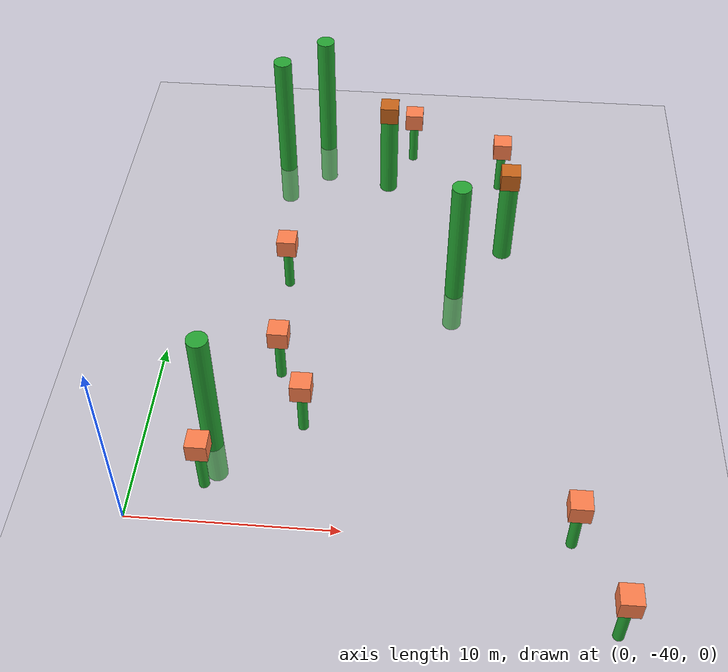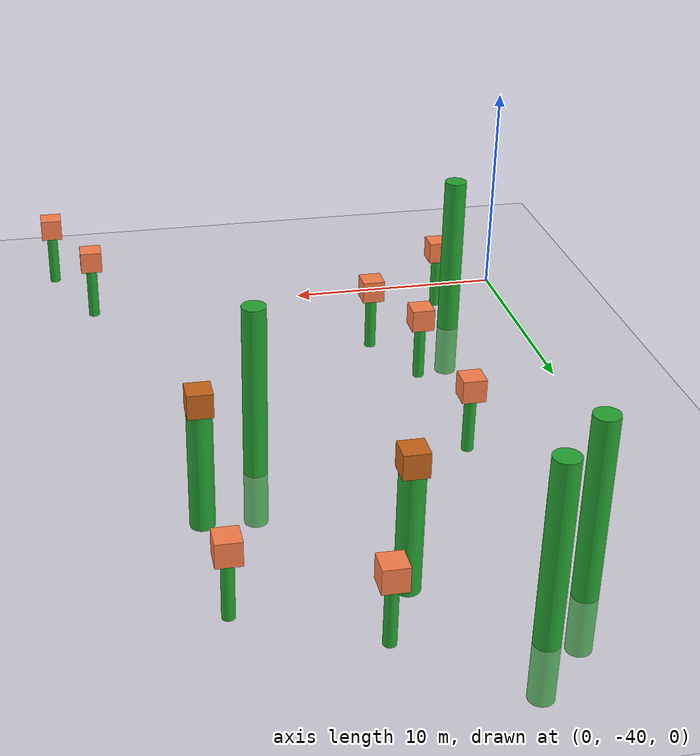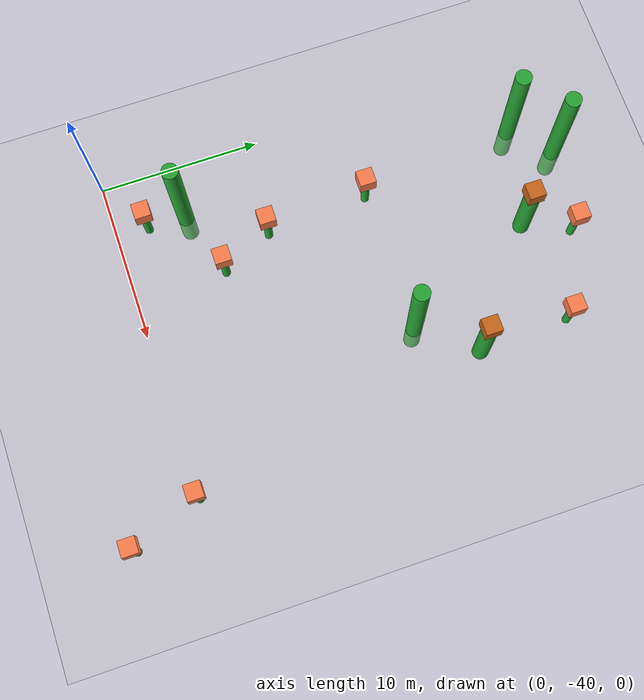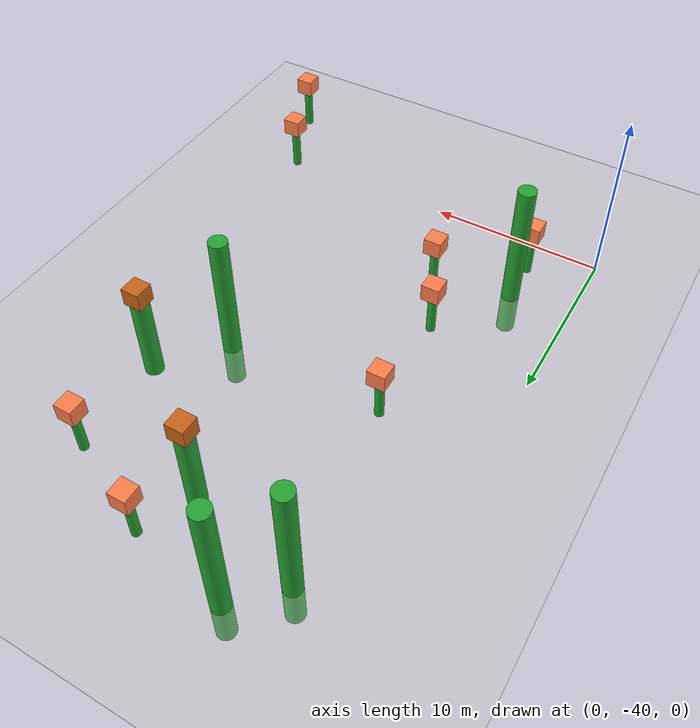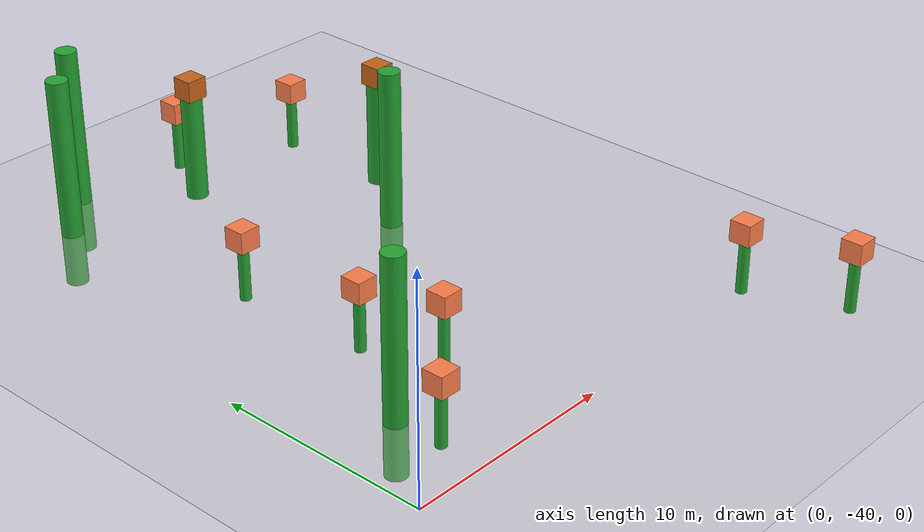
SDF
<sdf version="1.7">
 <world name="default">
  <model name="ground_plane">
   <static>1</static>
   <link name="link">
    <collision name="collision">
     <geometry><plane><normal>0 0 1</normal><size>100 100</size></plane></geometry>
     <surface>
      <contact><collide_bitmask>65535</collide_bitmask></contact>
      <friction><ode><mu>100</mu><mu2>50</mu2></ode></friction>
     </surface>
    </collision>
    <visual name="visual">
     <cast_shadows>0</cast_shadows>
     <geometry><plane><normal>0 0 1</normal><size>100 100</size></plane></geometry>
     <material>
      <script><uri>file://media/materials/scripts/gazebo.material</uri><name>Gazebo/Grey</name></script>
     </material>
    </visual>
   </link>
  </model>
  <model name="unit_cylinder_green_2_clone_clone_15">
   <link name="link">
    <inertial>
     <mass>1</mass>
     <inertia><ixx>0.145833</ixx><ixy>0</ixy><ixz>0</ixz><iyy>0.145833</iyy><iyz>0</iyz><izz>0.125</izz></inertia>
    </inertial>
    <visual name="visual">
     <geometry><cylinder><radius>0.5</radius><length>10</length></cylinder></geometry>
     <material>
      <script><name>Gazebo/Green</name><uri>file://media/materials/scripts/gazebo.material</uri></script>
      <shader type="pixel"><normal_map>__default__</normal_map></shader>
      <ambient>0 1 0.3 1</ambient>
      <diffuse>0.7 0.7 0.7 1</diffuse>
      <specular>0.01 0.01 0.01 1</specular>
      <emissive>0 0 0 1</emissive>
     </material>
    </visual>
    <collision name="collision">
     <geometry><cylinder><radius>0.5</radius><length>5</length></cylinder></geometry>
     <surface>
      <friction>
       <ode><mu>1</mu><mu2>1</mu2><fdir1>0 0 0</fdir1><slip1>0</slip1><slip2>0</slip2></ode>
       <torsional>
        <coefficient>1</coefficient>
        <patch_radius>0</patch_radius>
        <surface_radius>0</surface_radius>
        <use_patch_radius>1</use_patch_radius>
        <ode><slip>0</slip></ode>
       </torsional>
      </friction>
      <bounce><restitution_coefficient>0</restitution_coefficient><threshold>1e+06</threshold></bounce>
      <contact>
       <collide_without_contact>0</collide_without_contact>
       <collide_without_contact_bitmask>1</collide_without_contact_bitmask>
       <collide_bitmask>1</collide_bitmask>
       <ode>
        <soft_cfm>0</soft_cfm>
        <soft_erp>0.2</soft_erp>
        <kp>1e+13</kp>
        <kd>1</kd>
        <max_vel>0.01</max_vel>
        <min_depth>0</min_depth>
       </ode>
       <bullet>
        <split_impulse>1</split_impulse>
        <split_impulse_penetration_threshold>-0.01</split_impulse_penetration_threshold>
        <soft_cfm>0</soft_cfm>
        <soft_erp>0.2</soft_erp>
        <kp>1e+13</kp>
        <kd>1</kd>
       </bullet>
      </contact>
     </surface>
    </collision>
   </link>
   <static>1</static>
   <pose>4.37271 -14.6733 2.5 0 0 -0.000967</pose>
  </model>
  <model name="unit_cylinder_green_2_clone_clone_24">
   <link name="link">
    <inertial>
     <mass>1</mass>
     <inertia><ixx>0.145833</ixx><ixy>0</ixy><ixz>0</ixz><iyy>0.145833</iyy><iyz>0</iyz><izz>0.125</izz></inertia>
    </inertial>
    <visual name="visual">
     <geometry><cylinder><radius>0.5</radius><length>10</length></cylinder></geometry>
     <material>
      <script><name>Gazebo/Green</name><uri>file://media/materials/scripts/gazebo.material</uri></script>
      <shader type="pixel"><normal_map>__default__</normal_map></shader>
      <ambient>0 1 0.3 1</ambient>
      <diffuse>0.7 0.7 0.7 1</diffuse>
      <specular>0.01 0.01 0.01 1</specular>
      <emissive>0 0 0 1</emissive>
     </material>
    </visual>
    <collision name="collision">
     <geometry><cylinder><radius>0.5</radius><length>5</length></cylinder></geometry>
     <surface>
      <friction>
       <ode><mu>1</mu><mu2>1</mu2><fdir1>0 0 0</fdir1><slip1>0</slip1><slip2>0</slip2></ode>
       <torsional>
        <coefficient>1</coefficient>
        <patch_radius>0</patch_radius>
        <surface_radius>0</surface_radius>
        <use_patch_radius>1</use_patch_radius>
        <ode><slip>0</slip></ode>
       </torsional>
      </friction>
      <bounce><restitution_coefficient>0</restitution_coefficient><threshold>1e+06</threshold></bounce>
      <contact>
       <collide_without_contact>0</collide_without_contact>
       <collide_without_contact_bitmask>1</collide_without_contact_bitmask>
       <collide_bitmask>1</collide_bitmask>
       <ode>
        <soft_cfm>0</soft_cfm>
        <soft_erp>0.2</soft_erp>
        <kp>1e+13</kp>
        <kd>1</kd>
        <max_vel>0.01</max_vel>
        <min_depth>0</min_depth>
       </ode>
       <bullet>
        <split_impulse>1</split_impulse>
        <split_impulse_penetration_threshold>-0.01</split_impulse_penetration_threshold>
        <soft_cfm>0</soft_cfm>
        <soft_erp>0.2</soft_erp>
        <kp>1e+13</kp>
        <kd>1</kd>
       </bullet>
      </contact>
     </surface>
    </collision>
   </link>
   <static>1</static>
   <pose>14.6632 -24.6133 2.5 0 0 -0.000967</pose>
  </model>
  <model name="unit_cylinder_green_2_clone_clone_26">
   <link name="link">
    <inertial>
     <mass>1</mass>
     <inertia><ixx>0.145833</ixx><ixy>0</ixy><ixz>0</ixz><iyy>0.145833</iyy><iyz>0</iyz><izz>0.125</izz></inertia>
    </inertial>
    <visual name="visual">
     <geometry><cylinder><radius>0.5</radius><length>10</length></cylinder></geometry>
     <material>
      <script><name>Gazebo/Green</name><uri>file://media/materials/scripts/gazebo.material</uri></script>
      <shader type="pixel"><normal_map>__default__</normal_map></shader>
      <ambient>0 1 0.3 1</ambient>
      <diffuse>0.7 0.7 0.7 1</diffuse>
      <specular>0.01 0.01 0.01 1</specular>
      <emissive>0 0 0 1</emissive>
     </material>
    </visual>
    <collision name="collision">
     <geometry><cylinder><radius>0.5</radius><length>5</length></cylinder></geometry>
     <surface>
      <friction>
       <ode><mu>1</mu><mu2>1</mu2><fdir1>0 0 0</fdir1><slip1>0</slip1><slip2>0</slip2></ode>
       <torsional>
        <coefficient>1</coefficient>
        <patch_radius>0</patch_radius>
        <surface_radius>0</surface_radius>
        <use_patch_radius>1</use_patch_radius>
        <ode><slip>0</slip></ode>
       </torsional>
      </friction>
      <bounce><restitution_coefficient>0</restitution_coefficient><threshold>1e+06</threshold></bounce>
      <contact>
       <collide_without_contact>0</collide_without_contact>
       <collide_without_contact_bitmask>1</collide_without_contact_bitmask>
       <collide_bitmask>1</collide_bitmask>
       <ode>
        <soft_cfm>0</soft_cfm>
        <soft_erp>0.2</soft_erp>
        <kp>1e+13</kp>
        <kd>1</kd>
        <max_vel>0.01</max_vel>
        <min_depth>0</min_depth>
       </ode>
       <bullet>
        <split_impulse>1</split_impulse>
        <split_impulse_penetration_threshold>-0.01</split_impulse_penetration_threshold>
        <soft_cfm>0</soft_cfm>
        <soft_erp>0.2</soft_erp>
        <kp>1e+13</kp>
        <kd>1</kd>
       </bullet>
      </contact>
     </surface>
    </collision>
   </link>
   <static>1</static>
   <pose>3.3991 -35.5892 2.5 0 0 -0.000967</pose>
  </model>
  <model name="unit_cylinder_green_2_clone_clone_15_clone">
   <link name="link">
    <inertial>
     <mass>1</mass>
     <inertia><ixx>0.145833</ixx><ixy>0</ixy><ixz>0</ixz><iyy>0.145833</iyy><iyz>0</iyz><izz>0.125</izz></inertia>
    </inertial>
    <visual name="visual">
     <geometry><cylinder><radius>0.5</radius><length>10</length></cylinder></geometry>
     <material>
      <script><name>Gazebo/Green</name><uri>file://media/materials/scripts/gazebo.material</uri></script>
      <shader type="pixel"><normal_map>__default__</normal_map></shader>
      <ambient>0 1 0.3 1</ambient>
      <diffuse>0.7 0.7 0.7 1</diffuse>
      <specular>0.01 0.01 0.01 1</specular>
      <emissive>0 0 0 1</emissive>
     </material>
    </visual>
    <collision name="collision">
     <geometry><cylinder><radius>0.5</radius><length>5</length></cylinder></geometry>
     <surface>
      <friction>
       <ode><mu>1</mu><mu2>1</mu2><fdir1>0 0 0</fdir1><slip1>0</slip1><slip2>0</slip2></ode>
       <torsional>
        <coefficient>1</coefficient>
        <patch_radius>0</patch_radius>
        <surface_radius>0</surface_radius>
        <use_patch_radius>1</use_patch_radius>
        <ode><slip>0</slip></ode>
       </torsional>
      </friction>
      <bounce><restitution_coefficient>0</restitution_coefficient><threshold>1e+06</threshold></bounce>
      <contact>
       <collide_without_contact>0</collide_without_contact>
       <collide_without_contact_bitmask>1</collide_without_contact_bitmask>
       <collide_bitmask>1</collide_bitmask>
       <ode>
        <soft_cfm>0</soft_cfm>
        <soft_erp>0.2</soft_erp>
        <kp>1e+13</kp>
        <kd>1</kd>
        <max_vel>0.01</max_vel>
        <min_depth>0</min_depth>
       </ode>
       <bullet>
        <split_impulse>1</split_impulse>
        <split_impulse_penetration_threshold>-0.01</split_impulse_penetration_threshold>
        <soft_cfm>0</soft_cfm>
        <soft_erp>0.2</soft_erp>
        <kp>1e+13</kp>
        <kd>1</kd>
       </bullet>
      </contact>
     </surface>
    </collision>
   </link>
   <static>1</static>
   <pose>6.58105 -12.4761 2.5 0 0 -0.000946</pose>
  </model>
  <model name="unit_cylinder_green_2_clone_clone_3_clone_0_clone_0_clone_8">
   <link name="link">
    <inertial>
     <mass>1</mass>
     <inertia><ixx>0.145833</ixx><ixy>0</ixy><ixz>0</ixz><iyy>0.145833</iyy><iyz>0</iyz><izz>0.125</izz></inertia>
    </inertial>
    <visual name="visual">
     <geometry><cylinder><radius>0.5</radius><length>5</length></cylinder></geometry>
     <material>
      <script><name>Gazebo/Green</name><uri>file://media/materials/scripts/gazebo.material</uri></script>
      <shader type="pixel"><normal_map>__default__</normal_map></shader>
      <ambient>0 1 0.3 1</ambient>
      <diffuse>0.7 0.7 0.7 1</diffuse>
      <specular>0.01 0.01 0.01 1</specular>
      <emissive>0 0 0 1</emissive>
     </material>
    </visual>
    <collision name="collision">
     <geometry><cylinder><radius>0.5</radius><length>5</length></cylinder></geometry>
     <surface>
      <friction>
       <ode><mu>1</mu><mu2>1</mu2><fdir1>0 0 0</fdir1><slip1>0</slip1><slip2>0</slip2></ode>
       <torsional>
        <coefficient>1</coefficient>
        <patch_radius>0</patch_radius>
        <surface_radius>0</surface_radius>
        <use_patch_radius>1</use_patch_radius>
        <ode><slip>0</slip></ode>
       </torsional>
      </friction>
      <bounce><restitution_coefficient>0</restitution_coefficient><threshold>1e+06</threshold></bounce>
      <contact>
       <collide_without_contact>0</collide_without_contact>
       <collide_without_contact_bitmask>1</collide_without_contact_bitmask>
       <collide_bitmask>1</collide_bitmask>
       <ode>
        <soft_cfm>0</soft_cfm>
        <soft_erp>0.2</soft_erp>
        <kp>1e+13</kp>
        <kd>1</kd>
        <max_vel>0.01</max_vel>
        <min_depth>0</min_depth>
       </ode>
       <bullet>
        <split_impulse>1</split_impulse>
        <split_impulse_penetration_threshold>-0.01</split_impulse_penetration_threshold>
        <soft_cfm>0</soft_cfm>
        <soft_erp>0.2</soft_erp>
        <kp>1e+13</kp>
        <kd>1</kd>
       </bullet>
      </contact>
     </surface>
    </collision>
   </link>
   <link name="link_3">
    <inertial>
     <mass>1</mass>
     <inertia>
      <ixx>0.166667</ixx>
      <ixy>0</ixy>
      <ixz>0</ixz>
      <iyy>0.166667</iyy>
      <iyz>0</iyz>
      <izz>0.166667</izz>
     </inertia>
    </inertial>
    <pose>0 0 3 0 -0 0.000935</pose>
    <visual name="visual">
     <geometry><box><size>1 1 1</size></box></geometry>
     <material>
      <lighting>1</lighting>
      <script><uri>file://media/materials/scripts/gazebo.material</uri><name>Gazebo/Grey</name></script>
      <shader type="pixel"><normal_map>__default__</normal_map></shader>
      <ambient>0.8 0.4 0.1 1</ambient>
      <diffuse>0.7 0.7 0.7 1</diffuse>
      <specular>0.01 0.01 0.01 1</specular>
      <emissive>0 0 0 1</emissive>
     </material>
    </visual>
    <collision name="collision">
     <geometry><box><size>1 1 1</size></box></geometry>
     <surface>
      <friction>
       <ode><mu>1</mu><mu2>1</mu2><fdir1>0 0 0</fdir1><slip1>0</slip1><slip2>0</slip2></ode>
       <torsional>
        <coefficient>1</coefficient>
        <patch_radius>0</patch_radius>
        <surface_radius>0</surface_radius>
        <use_patch_radius>1</use_patch_radius>
        <ode><slip>0</slip></ode>
       </torsional>
      </friction>
      <bounce><restitution_coefficient>0</restitution_coefficient><threshold>1e+06</threshold></bounce>
      <contact>
       <collide_without_contact>0</collide_without_contact>
       <collide_without_contact_bitmask>1</collide_without_contact_bitmask>
       <collide_bitmask>1</collide_bitmask>
       <ode>
        <soft_cfm>0</soft_cfm>
        <soft_erp>0.2</soft_erp>
        <kp>1e+13</kp>
        <kd>1</kd>
        <max_vel>0.01</max_vel>
        <min_depth>0</min_depth>
       </ode>
       <bullet>
        <split_impulse>1</split_impulse>
        <split_impulse_penetration_threshold>-0.01</split_impulse_penetration_threshold>
        <soft_cfm>0</soft_cfm>
        <soft_erp>0.2</soft_erp>
        <kp>1e+13</kp>
        <kd>1</kd>
       </bullet>
      </contact>
     </surface>
    </collision>
   </link>
   <static>1</static>
   <pose>10.5411 -16.1097 2.49999 0 0 -0.000935</pose>
  </model>
  <model name="unit_cylinder_green_2_clone_clone_3_clone_0_clone_0_clone_11">
   <link name="link">
    <inertial>
     <mass>1</mass>
     <inertia><ixx>0.145833</ixx><ixy>0</ixy><ixz>0</ixz><iyy>0.145833</iyy><iyz>0</iyz><izz>0.125</izz></inertia>
    </inertial>
    <visual name="visual">
     <geometry><cylinder><radius>0.5</radius><length>5</length></cylinder></geometry>
     <material>
      <script><name>Gazebo/Green</name><uri>file://media/materials/scripts/gazebo.material</uri></script>
      <shader type="pixel"><normal_map>__default__</normal_map></shader>
      <ambient>0 1 0.3 1</ambient>
      <diffuse>0.7 0.7 0.7 1</diffuse>
      <specular>0.01 0.01 0.01 1</specular>
      <emissive>0 0 0 1</emissive>
     </material>
    </visual>
    <collision name="collision">
     <geometry><cylinder><radius>0.5</radius><length>5</length></cylinder></geometry>
     <surface>
      <friction>
       <ode><mu>1</mu><mu2>1</mu2><fdir1>0 0 0</fdir1><slip1>0</slip1><slip2>0</slip2></ode>
       <torsional>
        <coefficient>1</coefficient>
        <patch_radius>0</patch_radius>
        <surface_radius>0</surface_radius>
        <use_patch_radius>1</use_patch_radius>
        <ode><slip>0</slip></ode>
       </torsional>
      </friction>
      <bounce><restitution_coefficient>0</restitution_coefficient><threshold>1e+06</threshold></bounce>
      <contact>
       <collide_without_contact>0</collide_without_contact>
       <collide_without_contact_bitmask>1</collide_without_contact_bitmask>
       <collide_bitmask>1</collide_bitmask>
       <ode>
        <soft_cfm>0</soft_cfm>
        <soft_erp>0.2</soft_erp>
        <kp>1e+13</kp>
        <kd>1</kd>
        <max_vel>0.01</max_vel>
        <min_depth>0</min_depth>
       </ode>
       <bullet>
        <split_impulse>1</split_impulse>
        <split_impulse_penetration_threshold>-0.01</split_impulse_penetration_threshold>
        <soft_cfm>0</soft_cfm>
        <soft_erp>0.2</soft_erp>
        <kp>1e+13</kp>
        <kd>1</kd>
       </bullet>
      </contact>
     </surface>
    </collision>
   </link>
   <link name="link_3">
    <inertial>
     <mass>1</mass>
     <inertia>
      <ixx>0.166667</ixx>
      <ixy>0</ixy>
      <ixz>0</ixz>
      <iyy>0.166667</iyy>
      <iyz>0</iyz>
      <izz>0.166667</izz>
     </inertia>
    </inertial>
    <pose>0 0 3 0 -0 0.000935</pose>
    <visual name="visual">
     <geometry><box><size>1 1 1</size></box></geometry>
     <material>
      <lighting>1</lighting>
      <script><uri>file://media/materials/scripts/gazebo.material</uri><name>Gazebo/Grey</name></script>
      <shader type="pixel"><normal_map>__default__</normal_map></shader>
      <ambient>0.8 0.4 0.1 1</ambient>
      <diffuse>0.7 0.7 0.7 1</diffuse>
      <specular>0.01 0.01 0.01 1</specular>
      <emissive>0 0 0 1</emissive>
     </material>
    </visual>
    <collision name="collision">
     <geometry><box><size>1 1 1</size></box></geometry>
     <surface>
      <friction>
       <ode><mu>1</mu><mu2>1</mu2><fdir1>0 0 0</fdir1><slip1>0</slip1><slip2>0</slip2></ode>
       <torsional>
        <coefficient>1</coefficient>
        <patch_radius>0</patch_radius>
        <surface_radius>0</surface_radius>
        <use_patch_radius>1</use_patch_radius>
        <ode><slip>0</slip></ode>
       </torsional>
      </friction>
      <bounce><restitution_coefficient>0</restitution_coefficient><threshold>1e+06</threshold></bounce>
      <contact>
       <collide_without_contact>0</collide_without_contact>
       <collide_without_contact_bitmask>1</collide_without_contact_bitmask>
       <collide_bitmask>1</collide_bitmask>
       <ode>
        <soft_cfm>0</soft_cfm>
        <soft_erp>0.2</soft_erp>
        <kp>1e+13</kp>
        <kd>1</kd>
        <max_vel>0.01</max_vel>
        <min_depth>0</min_depth>
       </ode>
       <bullet>
        <split_impulse>1</split_impulse>
        <split_impulse_penetration_threshold>-0.01</split_impulse_penetration_threshold>
        <soft_cfm>0</soft_cfm>
        <soft_erp>0.2</soft_erp>
        <kp>1e+13</kp>
        <kd>1</kd>
       </bullet>
      </contact>
     </surface>
    </collision>
   </link>
   <static>1</static>
   <pose>17.2537 -21.3127 2.49999 0 0 -0.000935</pose>
  </model>
  <model name="unit_cylinder_green_2_clone_clone_3_clone_0_clone_0_clone_57">
   <link name="link">
    <inertial>
     <mass>1</mass>
     <inertia><ixx>0.145833</ixx><ixy>0</ixy><ixz>0</ixz><iyy>0.145833</iyy><iyz>0</iyz><izz>0.125</izz></inertia>
    </inertial>
    <pose>0 0 -1.25 0 -0 0</pose>
    <visual name="visual">
     <geometry><cylinder><radius>0.25</radius><length>2.5</length></cylinder></geometry>
     <material>
      <script><name>Gazebo/Green</name><uri>file://media/materials/scripts/gazebo.material</uri></script>
      <shader type="pixel"><normal_map>__default__</normal_map></shader>
      <ambient>0 1 0.3 1</ambient>
      <diffuse>0.7 0.7 0.7 1</diffuse>
      <specular>0.01 0.01 0.01 1</specular>
      <emissive>0 0 0 1</emissive>
     </material>
    </visual>
    <collision name="collision">
     <geometry><cylinder><radius>0.5</radius><length>5</length></cylinder></geometry>
     <surface>
      <friction>
       <ode><mu>1</mu><mu2>1</mu2><fdir1>0 0 0</fdir1><slip1>0</slip1><slip2>0</slip2></ode>
       <torsional>
        <coefficient>1</coefficient>
        <patch_radius>0</patch_radius>
        <surface_radius>0</surface_radius>
        <use_patch_radius>1</use_patch_radius>
        <ode><slip>0</slip></ode>
       </torsional>
      </friction>
      <bounce><restitution_coefficient>0</restitution_coefficient><threshold>1e+06</threshold></bounce>
      <contact>
       <collide_without_contact>0</collide_without_contact>
       <collide_without_contact_bitmask>1</collide_without_contact_bitmask>
       <collide_bitmask>1</collide_bitmask>
       <ode>
        <soft_cfm>0</soft_cfm>
        <soft_erp>0.2</soft_erp>
        <kp>1e+13</kp>
        <kd>1</kd>
        <max_vel>0.01</max_vel>
        <min_depth>0</min_depth>
       </ode>
       <bullet>
        <split_impulse>1</split_impulse>
        <split_impulse_penetration_threshold>-0.01</split_impulse_penetration_threshold>
        <soft_cfm>0</soft_cfm>
        <soft_erp>0.2</soft_erp>
        <kp>1e+13</kp>
        <kd>1</kd>
       </bullet>
      </contact>
     </surface>
    </collision>
   </link>
   <link name="link_3">
    <inertial>
     <mass>1</mass>
     <inertia>
      <ixx>0.166667</ixx>
      <ixy>0</ixy>
      <ixz>0</ixz>
      <iyy>0.166667</iyy>
      <iyz>0</iyz>
      <izz>0.166667</izz>
     </inertia>
    </inertial>
    <pose>0 0 0.5 0 -0 0.000935</pose>
    <visual name="visual">
     <geometry><box><size>1 1 1</size></box></geometry>
     <material>
      <lighting>1</lighting>
      <script><uri>file://media/materials/scripts/gazebo.material</uri><name>Gazebo/Grey</name></script>
      <shader type="pixel"><normal_map>__default__</normal_map></shader>
      <ambient>1 0.5 0.3 1</ambient>
      <diffuse>0.7 0.7 0.7 1</diffuse>
      <specular>0.01 0.01 0.01 1</specular>
      <emissive>0 0 0 1</emissive>
     </material>
    </visual>
    <collision name="collision">
     <geometry><box><size>1 1 1</size></box></geometry>
     <surface>
      <friction>
       <ode><mu>1</mu><mu2>1</mu2><fdir1>0 0 0</fdir1><slip1>0</slip1><slip2>0</slip2></ode>
       <torsional>
        <coefficient>1</coefficient>
        <patch_radius>0</patch_radius>
        <surface_radius>0</surface_radius>
        <use_patch_radius>1</use_patch_radius>
        <ode><slip>0</slip></ode>
       </torsional>
      </friction>
      <bounce><restitution_coefficient>0</restitution_coefficient><threshold>1e+06</threshold></bounce>
      <contact>
       <collide_without_contact>0</collide_without_contact>
       <collide_without_contact_bitmask>1</collide_without_contact_bitmask>
       <collide_bitmask>1</collide_bitmask>
       <ode>
        <soft_cfm>0</soft_cfm>
        <soft_erp>0.2</soft_erp>
        <kp>1e+13</kp>
        <kd>1</kd>
        <max_vel>0.01</max_vel>
        <min_depth>0</min_depth>
       </ode>
       <bullet>
        <split_impulse>1</split_impulse>
        <split_impulse_penetration_threshold>-0.01</split_impulse_penetration_threshold>
        <soft_cfm>0</soft_cfm>
        <soft_erp>0.2</soft_erp>
        <kp>1e+13</kp>
        <kd>1</kd>
       </bullet>
      </contact>
     </surface>
    </collision>
   </link>
   <static>1</static>
   <pose>6.10881 -31.0498 2.49999 0 0 -0.000935</pose>
  </model>
  <model name="unit_cylinder_green_2_clone_clone_3_clone_0_clone_0_clone_58">
   <link name="link">
    <inertial>
     <mass>1</mass>
     <inertia><ixx>0.145833</ixx><ixy>0</ixy><ixz>0</ixz><iyy>0.145833</iyy><iyz>0</iyz><izz>0.125</izz></inertia>
    </inertial>
    <pose>0 0 -1.25 0 -0 0</pose>
    <visual name="visual">
     <geometry><cylinder><radius>0.25</radius><length>2.5</length></cylinder></geometry>
     <material>
      <script><name>Gazebo/Green</name><uri>file://media/materials/scripts/gazebo.material</uri></script>
      <shader type="pixel"><normal_map>__default__</normal_map></shader>
      <ambient>0 1 0.3 1</ambient>
      <diffuse>0.7 0.7 0.7 1</diffuse>
      <specular>0.01 0.01 0.01 1</specular>
      <emissive>0 0 0 1</emissive>
     </material>
    </visual>
    <collision name="collision">
     <geometry><cylinder><radius>0.5</radius><length>5</length></cylinder></geometry>
     <surface>
      <friction>
       <ode><mu>1</mu><mu2>1</mu2><fdir1>0 0 0</fdir1><slip1>0</slip1><slip2>0</slip2></ode>
       <torsional>
        <coefficient>1</coefficient>
        <patch_radius>0</patch_radius>
        <surface_radius>0</surface_radius>
        <use_patch_radius>1</use_patch_radius>
        <ode><slip>0</slip></ode>
       </torsional>
      </friction>
      <bounce><restitution_coefficient>0</restitution_coefficient><threshold>1e+06</threshold></bounce>
      <contact>
       <collide_without_contact>0</collide_without_contact>
       <collide_without_contact_bitmask>1</collide_without_contact_bitmask>
       <collide_bitmask>1</collide_bitmask>
       <ode>
        <soft_cfm>0</soft_cfm>
        <soft_erp>0.2</soft_erp>
        <kp>1e+13</kp>
        <kd>1</kd>
        <max_vel>0.01</max_vel>
        <min_depth>0</min_depth>
       </ode>
       <bullet>
        <split_impulse>1</split_impulse>
        <split_impulse_penetration_threshold>-0.01</split_impulse_penetration_threshold>
        <soft_cfm>0</soft_cfm>
        <soft_erp>0.2</soft_erp>
        <kp>1e+13</kp>
        <kd>1</kd>
       </bullet>
      </contact>
     </surface>
    </collision>
   </link>
   <link name="link_3">
    <inertial>
     <mass>1</mass>
     <inertia>
      <ixx>0.166667</ixx>
      <ixy>0</ixy>
      <ixz>0</ixz>
      <iyy>0.166667</iyy>
      <iyz>0</iyz>
      <izz>0.166667</izz>
     </inertia>
    </inertial>
    <pose>0 0 0.5 0 -0 0.000935</pose>
    <visual name="visual">
     <geometry><box><size>1 1 1</size></box></geometry>
     <material>
      <lighting>1</lighting>
      <script><uri>file://media/materials/scripts/gazebo.material</uri><name>Gazebo/Grey</name></script>
      <shader type="pixel"><normal_map>__default__</normal_map></shader>
      <ambient>1 0.5 0.3 1</ambient>
      <diffuse>0.7 0.7 0.7 1</diffuse>
      <specular>0.01 0.01 0.01 1</specular>
      <emissive>0 0 0 1</emissive>
     </material>
    </visual>
    <collision name="collision">
     <geometry><box><size>1 1 1</size></box></geometry>
     <surface>
      <friction>
       <ode><mu>1</mu><mu2>1</mu2><fdir1>0 0 0</fdir1><slip1>0</slip1><slip2>0</slip2></ode>
       <torsional>
        <coefficient>1</coefficient>
        <patch_radius>0</patch_radius>
        <surface_radius>0</surface_radius>
        <use_patch_radius>1</use_patch_radius>
        <ode><slip>0</slip></ode>
       </torsional>
      </friction>
      <bounce><restitution_coefficient>0</restitution_coefficient><threshold>1e+06</threshold></bounce>
      <contact>
       <collide_without_contact>0</collide_without_contact>
       <collide_without_contact_bitmask>1</collide_without_contact_bitmask>
       <collide_bitmask>1</collide_bitmask>
       <ode>
        <soft_cfm>0</soft_cfm>
        <soft_erp>0.2</soft_erp>
        <kp>1e+13</kp>
        <kd>1</kd>
        <max_vel>0.01</max_vel>
        <min_depth>0</min_depth>
       </ode>
       <bullet>
        <split_impulse>1</split_impulse>
        <split_impulse_penetration_threshold>-0.01</split_impulse_penetration_threshold>
        <soft_cfm>0</soft_cfm>
        <soft_erp>0.2</soft_erp>
        <kp>1e+13</kp>
        <kd>1</kd>
       </bullet>
      </contact>
     </surface>
    </collision>
   </link>
   <static>1</static>
   <pose>5.71475 -24.6496 2.49999 0 0 -0.000935</pose>
  </model>
  <model name="unit_cylinder_green_2_clone_clone_3_clone_0_clone_0_clone_72">
   <link name="link">
    <inertial>
     <mass>1</mass>
     <inertia><ixx>0.145833</ixx><ixy>0</ixy><ixz>0</ixz><iyy>0.145833</iyy><iyz>0</iyz><izz>0.125</izz></inertia>
    </inertial>
    <pose>0 0 -1.25 0 -0 0</pose>
    <visual name="visual">
     <geometry><cylinder><radius>0.25</radius><length>2.5</length></cylinder></geometry>
     <material>
      <script><name>Gazebo/Green</name><uri>file://media/materials/scripts/gazebo.material</uri></script>
      <shader type="pixel"><normal_map>__default__</normal_map></shader>
      <ambient>0 1 0.3 1</ambient>
      <diffuse>0.7 0.7 0.7 1</diffuse>
      <specular>0.01 0.01 0.01 1</specular>
      <emissive>0 0 0 1</emissive>
     </material>
    </visual>
    <collision name="collision">
     <geometry><cylinder><radius>0.5</radius><length>5</length></cylinder></geometry>
     <surface>
      <friction>
       <ode><mu>1</mu><mu2>1</mu2><fdir1>0 0 0</fdir1><slip1>0</slip1><slip2>0</slip2></ode>
       <torsional>
        <coefficient>1</coefficient>
        <patch_radius>0</patch_radius>
        <surface_radius>0</surface_radius>
        <use_patch_radius>1</use_patch_radius>
        <ode><slip>0</slip></ode>
       </torsional>
      </friction>
      <bounce><restitution_coefficient>0</restitution_coefficient><threshold>1e+06</threshold></bounce>
      <contact>
       <collide_without_contact>0</collide_without_contact>
       <collide_without_contact_bitmask>1</collide_without_contact_bitmask>
       <collide_bitmask>1</collide_bitmask>
       <ode>
        <soft_cfm>0</soft_cfm>
        <soft_erp>0.2</soft_erp>
        <kp>1e+13</kp>
        <kd>1</kd>
        <max_vel>0.01</max_vel>
        <min_depth>0</min_depth>
       </ode>
       <bullet>
        <split_impulse>1</split_impulse>
        <split_impulse_penetration_threshold>-0.01</split_impulse_penetration_threshold>
        <soft_cfm>0</soft_cfm>
        <soft_erp>0.2</soft_erp>
        <kp>1e+13</kp>
        <kd>1</kd>
       </bullet>
      </contact>
     </surface>
    </collision>
   </link>
   <link name="link_3">
    <inertial>
     <mass>1</mass>
     <inertia>
      <ixx>0.166667</ixx>
      <ixy>0</ixy>
      <ixz>0</ixz>
      <iyy>0.166667</iyy>
      <iyz>0</iyz>
      <izz>0.166667</izz>
     </inertia>
    </inertial>
    <pose>0 0 0.5 0 -0 0.000935</pose>
    <visual name="visual">
     <geometry><box><size>1 1 1</size></box></geometry>
     <material>
      <lighting>1</lighting>
      <script><uri>file://media/materials/scripts/gazebo.material</uri><name>Gazebo/Grey</name></script>
      <shader type="pixel"><normal_map>__default__</normal_map></shader>
      <ambient>1 0.5 0.3 1</ambient>
      <diffuse>0.7 0.7 0.7 1</diffuse>
      <specular>0.01 0.01 0.01 1</specular>
      <emissive>0 0 0 1</emissive>
     </material>
    </visual>
    <collision name="collision">
     <geometry><box><size>1 1 1</size></box></geometry>
     <surface>
      <friction>
       <ode><mu>1</mu><mu2>1</mu2><fdir1>0 0 0</fdir1><slip1>0</slip1><slip2>0</slip2></ode>
       <torsional>
        <coefficient>1</coefficient>
        <patch_radius>0</patch_radius>
        <surface_radius>0</surface_radius>
        <use_patch_radius>1</use_patch_radius>
        <ode><slip>0</slip></ode>
       </torsional>
      </friction>
      <bounce><restitution_coefficient>0</restitution_coefficient><threshold>1e+06</threshold></bounce>
      <contact>
       <collide_without_contact>0</collide_without_contact>
       <collide_without_contact_bitmask>1</collide_without_contact_bitmask>
       <collide_bitmask>1</collide_bitmask>
       <ode>
        <soft_cfm>0</soft_cfm>
        <soft_erp>0.2</soft_erp>
        <kp>1e+13</kp>
        <kd>1</kd>
        <max_vel>0.01</max_vel>
        <min_depth>0</min_depth>
       </ode>
       <bullet>
        <split_impulse>1</split_impulse>
        <split_impulse_penetration_threshold>-0.01</split_impulse_penetration_threshold>
        <soft_cfm>0</soft_cfm>
        <soft_erp>0.2</soft_erp>
        <kp>1e+13</kp>
        <kd>1</kd>
       </bullet>
      </contact>
     </surface>
    </collision>
   </link>
   <static>1</static>
   <pose>17.0635 -15.6875 2.49999 0 0 -0.000935</pose>
  </model>
  <model name="unit_cylinder_green_2_clone_clone_3_clone_0_clone_0_clone_74">
   <link name="link">
    <inertial>
     <mass>1</mass>
     <inertia><ixx>0.145833</ixx><ixy>0</ixy><ixz>0</ixz><iyy>0.145833</iyy><iyz>0</iyz><izz>0.125</izz></inertia>
    </inertial>
    <pose>0 0 -1.25 0 -0 0</pose>
    <visual name="visual">
     <geometry><cylinder><radius>0.25</radius><length>2.5</length></cylinder></geometry>
     <material>
      <script><name>Gazebo/Green</name><uri>file://media/materials/scripts/gazebo.material</uri></script>
      <shader type="pixel"><normal_map>__default__</normal_map></shader>
      <ambient>0 1 0.3 1</ambient>
      <diffuse>0.7 0.7 0.7 1</diffuse>
      <specular>0.01 0.01 0.01 1</specular>
      <emissive>0 0 0 1</emissive>
     </material>
    </visual>
    <collision name="collision">
     <geometry><cylinder><radius>0.5</radius><length>5</length></cylinder></geometry>
     <surface>
      <friction>
       <ode><mu>1</mu><mu2>1</mu2><fdir1>0 0 0</fdir1><slip1>0</slip1><slip2>0</slip2></ode>
       <torsional>
        <coefficient>1</coefficient>
        <patch_radius>0</patch_radius>
        <surface_radius>0</surface_radius>
        <use_patch_radius>1</use_patch_radius>
        <ode><slip>0</slip></ode>
       </torsional>
      </friction>
      <bounce><restitution_coefficient>0</restitution_coefficient><threshold>1e+06</threshold></bounce>
      <contact>
       <collide_without_contact>0</collide_without_contact>
       <collide_without_contact_bitmask>1</collide_without_contact_bitmask>
       <collide_bitmask>1</collide_bitmask>
       <ode>
        <soft_cfm>0</soft_cfm>
        <soft_erp>0.2</soft_erp>
        <kp>1e+13</kp>
        <kd>1</kd>
        <max_vel>0.01</max_vel>
        <min_depth>0</min_depth>
       </ode>
       <bullet>
        <split_impulse>1</split_impulse>
        <split_impulse_penetration_threshold>-0.01</split_impulse_penetration_threshold>
        <soft_cfm>0</soft_cfm>
        <soft_erp>0.2</soft_erp>
        <kp>1e+13</kp>
        <kd>1</kd>
       </bullet>
      </contact>
     </surface>
    </collision>
   </link>
   <link name="link_3">
    <inertial>
     <mass>1</mass>
     <inertia>
      <ixx>0.166667</ixx>
      <ixy>0</ixy>
      <ixz>0</ixz>
      <iyy>0.166667</iyy>
      <iyz>0</iyz>
      <izz>0.166667</izz>
     </inertia>
    </inertial>
    <pose>0 0 0.5 0 -0 0.000935</pose>
    <visual name="visual">
     <geometry><box><size>1 1 1</size></box></geometry>
     <material>
      <lighting>1</lighting>
      <script><uri>file://media/materials/scripts/gazebo.material</uri><name>Gazebo/Grey</name></script>
      <shader type="pixel"><normal_map>__default__</normal_map></shader>
      <ambient>1 0.5 0.3 1</ambient>
      <diffuse>0.7 0.7 0.7 1</diffuse>
      <specular>0.01 0.01 0.01 1</specular>
      <emissive>0 0 0 1</emissive>
     </material>
    </visual>
    <collision name="collision">
     <geometry><box><size>1 1 1</size></box></geometry>
     <surface>
      <friction>
       <ode><mu>1</mu><mu2>1</mu2><fdir1>0 0 0</fdir1><slip1>0</slip1><slip2>0</slip2></ode>
       <torsional>
        <coefficient>1</coefficient>
        <patch_radius>0</patch_radius>
        <surface_radius>0</surface_radius>
        <use_patch_radius>1</use_patch_radius>
        <ode><slip>0</slip></ode>
       </torsional>
      </friction>
      <bounce><restitution_coefficient>0</restitution_coefficient><threshold>1e+06</threshold></bounce>
      <contact>
       <collide_without_contact>0</collide_without_contact>
       <collide_without_contact_bitmask>1</collide_without_contact_bitmask>
       <collide_bitmask>1</collide_bitmask>
       <ode>
        <soft_cfm>0</soft_cfm>
        <soft_erp>0.2</soft_erp>
        <kp>1e+13</kp>
        <kd>1</kd>
        <max_vel>0.01</max_vel>
        <min_depth>0</min_depth>
       </ode>
       <bullet>
        <split_impulse>1</split_impulse>
        <split_impulse_penetration_threshold>-0.01</split_impulse_penetration_threshold>
        <soft_cfm>0</soft_cfm>
        <soft_erp>0.2</soft_erp>
        <kp>1e+13</kp>
        <kd>1</kd>
       </bullet>
      </contact>
     </surface>
    </collision>
   </link>
   <static>1</static>
   <pose>11.8718 -13.3373 2.49999 0 0 -0.000935</pose>
  </model>
  <model name="unit_cylinder_green_2_clone_clone_3_clone_0_clone_0_clone_78">
   <link name="link">
    <inertial>
     <mass>1</mass>
     <inertia><ixx>0.145833</ixx><ixy>0</ixy><ixz>0</ixz><iyy>0.145833</iyy><iyz>0</iyz><izz>0.125</izz></inertia>
    </inertial>
    <pose>0 0 -1.25 0 -0 0</pose>
    <visual name="visual">
     <geometry><cylinder><radius>0.25</radius><length>2.5</length></cylinder></geometry>
     <material>
      <script><name>Gazebo/Green</name><uri>file://media/materials/scripts/gazebo.material</uri></script>
      <shader type="pixel"><normal_map>__default__</normal_map></shader>
      <ambient>0 1 0.3 1</ambient>
      <diffuse>0.7 0.7 0.7 1</diffuse>
      <specular>0.01 0.01 0.01 1</specular>
      <emissive>0 0 0 1</emissive>
     </material>
    </visual>
    <collision name="collision">
     <geometry><cylinder><radius>0.5</radius><length>5</length></cylinder></geometry>
     <surface>
      <friction>
       <ode><mu>1</mu><mu2>1</mu2><fdir1>0 0 0</fdir1><slip1>0</slip1><slip2>0</slip2></ode>
       <torsional>
        <coefficient>1</coefficient>
        <patch_radius>0</patch_radius>
        <surface_radius>0</surface_radius>
        <use_patch_radius>1</use_patch_radius>
        <ode><slip>0</slip></ode>
       </torsional>
      </friction>
      <bounce><restitution_coefficient>0</restitution_coefficient><threshold>1e+06</threshold></bounce>
      <contact>
       <collide_without_contact>0</collide_without_contact>
       <collide_without_contact_bitmask>1</collide_without_contact_bitmask>
       <collide_bitmask>1</collide_bitmask>
       <ode>
        <soft_cfm>0</soft_cfm>
        <soft_erp>0.2</soft_erp>
        <kp>1e+13</kp>
        <kd>1</kd>
        <max_vel>0.01</max_vel>
        <min_depth>0</min_depth>
       </ode>
       <bullet>
        <split_impulse>1</split_impulse>
        <split_impulse_penetration_threshold>-0.01</split_impulse_penetration_threshold>
        <soft_cfm>0</soft_cfm>
        <soft_erp>0.2</soft_erp>
        <kp>1e+13</kp>
        <kd>1</kd>
       </bullet>
      </contact>
     </surface>
    </collision>
   </link>
   <link name="link_3">
    <inertial>
     <mass>1</mass>
     <inertia>
      <ixx>0.166667</ixx>
      <ixy>0</ixy>
      <ixz>0</ixz>
      <iyy>0.166667</iyy>
      <iyz>0</iyz>
      <izz>0.166667</izz>
     </inertia>
    </inertial>
    <pose>0 0 0.5 0 -0 0.000935</pose>
    <visual name="visual">
     <geometry><box><size>1 1 1</size></box></geometry>
     <material>
      <lighting>1</lighting>
      <script><uri>file://media/materials/scripts/gazebo.material</uri><name>Gazebo/Grey</name></script>
      <shader type="pixel"><normal_map>__default__</normal_map></shader>
      <ambient>1 0.5 0.3 1</ambient>
      <diffuse>0.7 0.7 0.7 1</diffuse>
      <specular>0.01 0.01 0.01 1</specular>
      <emissive>0 0 0 1</emissive>
     </material>
    </visual>
    <collision name="collision">
     <geometry><box><size>1 1 1</size></box></geometry>
     <surface>
      <friction>
       <ode><mu>1</mu><mu2>1</mu2><fdir1>0 0 0</fdir1><slip1>0</slip1><slip2>0</slip2></ode>
       <torsional>
        <coefficient>1</coefficient>
        <patch_radius>0</patch_radius>
        <surface_radius>0</surface_radius>
        <use_patch_radius>1</use_patch_radius>
        <ode><slip>0</slip></ode>
       </torsional>
      </friction>
      <bounce><restitution_coefficient>0</restitution_coefficient><threshold>1e+06</threshold></bounce>
      <contact>
       <collide_without_contact>0</collide_without_contact>
       <collide_without_contact_bitmask>1</collide_without_contact_bitmask>
       <collide_bitmask>1</collide_bitmask>
       <ode>
        <soft_cfm>0</soft_cfm>
        <soft_erp>0.2</soft_erp>
        <kp>1e+13</kp>
        <kd>1</kd>
        <max_vel>0.01</max_vel>
        <min_depth>0</min_depth>
       </ode>
       <bullet>
        <split_impulse>1</split_impulse>
        <split_impulse_penetration_threshold>-0.01</split_impulse_penetration_threshold>
        <soft_cfm>0</soft_cfm>
        <soft_erp>0.2</soft_erp>
        <kp>1e+13</kp>
        <kd>1</kd>
       </bullet>
      </contact>
     </surface>
    </collision>
   </link>
   <static>1</static>
   <pose>22.0675 -44.0721 2.49999 0 0 -0.000935</pose>
  </model>
  <model name="unit_cylinder_green_2_clone_clone_3_clone_0_clone_0_clone_79">
   <link name="link">
    <inertial>
     <mass>1</mass>
     <inertia><ixx>0.145833</ixx><ixy>0</ixy><ixz>0</ixz><iyy>0.145833</iyy><iyz>0</iyz><izz>0.125</izz></inertia>
    </inertial>
    <pose>0 0 -1.25 0 -0 0</pose>
    <visual name="visual">
     <geometry><cylinder><radius>0.25</radius><length>2.5</length></cylinder></geometry>
     <material>
      <script><name>Gazebo/Green</name><uri>file://media/materials/scripts/gazebo.material</uri></script>
      <shader type="pixel"><normal_map>__default__</normal_map></shader>
      <ambient>0 1 0.3 1</ambient>
      <diffuse>0.7 0.7 0.7 1</diffuse>
      <specular>0.01 0.01 0.01 1</specular>
      <emissive>0 0 0 1</emissive>
     </material>
    </visual>
    <collision name="collision">
     <geometry><cylinder><radius>0.5</radius><length>5</length></cylinder></geometry>
     <surface>
      <friction>
       <ode><mu>1</mu><mu2>1</mu2><fdir1>0 0 0</fdir1><slip1>0</slip1><slip2>0</slip2></ode>
       <torsional>
        <coefficient>1</coefficient>
        <patch_radius>0</patch_radius>
        <surface_radius>0</surface_radius>
        <use_patch_radius>1</use_patch_radius>
        <ode><slip>0</slip></ode>
       </torsional>
      </friction>
      <bounce><restitution_coefficient>0</restitution_coefficient><threshold>1e+06</threshold></bounce>
      <contact>
       <collide_without_contact>0</collide_without_contact>
       <collide_without_contact_bitmask>1</collide_without_contact_bitmask>
       <collide_bitmask>1</collide_bitmask>
       <ode>
        <soft_cfm>0</soft_cfm>
        <soft_erp>0.2</soft_erp>
        <kp>1e+13</kp>
        <kd>1</kd>
        <max_vel>0.01</max_vel>
        <min_depth>0</min_depth>
       </ode>
       <bullet>
        <split_impulse>1</split_impulse>
        <split_impulse_penetration_threshold>-0.01</split_impulse_penetration_threshold>
        <soft_cfm>0</soft_cfm>
        <soft_erp>0.2</soft_erp>
        <kp>1e+13</kp>
        <kd>1</kd>
       </bullet>
      </contact>
     </surface>
    </collision>
   </link>
   <link name="link_3">
    <inertial>
     <mass>1</mass>
     <inertia>
      <ixx>0.166667</ixx>
      <ixy>0</ixy>
      <ixz>0</ixz>
      <iyy>0.166667</iyy>
      <iyz>0</iyz>
      <izz>0.166667</izz>
     </inertia>
    </inertial>
    <pose>0 0 0.5 0 -0 0.000935</pose>
    <visual name="visual">
     <geometry><box><size>1 1 1</size></box></geometry>
     <material>
      <lighting>1</lighting>
      <script><uri>file://media/materials/scripts/gazebo.material</uri><name>Gazebo/Grey</name></script>
      <shader type="pixel"><normal_map>__default__</normal_map></shader>
      <ambient>1 0.5 0.3 1</ambient>
      <diffuse>0.7 0.7 0.7 1</diffuse>
      <specular>0.01 0.01 0.01 1</specular>
      <emissive>0 0 0 1</emissive>
     </material>
    </visual>
    <collision name="collision">
     <geometry><box><size>1 1 1</size></box></geometry>
     <surface>
      <friction>
       <ode><mu>1</mu><mu2>1</mu2><fdir1>0 0 0</fdir1><slip1>0</slip1><slip2>0</slip2></ode>
       <torsional>
        <coefficient>1</coefficient>
        <patch_radius>0</patch_radius>
        <surface_radius>0</surface_radius>
        <use_patch_radius>1</use_patch_radius>
        <ode><slip>0</slip></ode>
       </torsional>
      </friction>
      <bounce><restitution_coefficient>0</restitution_coefficient><threshold>1e+06</threshold></bounce>
      <contact>
       <collide_without_contact>0</collide_without_contact>
       <collide_without_contact_bitmask>1</collide_without_contact_bitmask>
       <collide_bitmask>1</collide_bitmask>
       <ode>
        <soft_cfm>0</soft_cfm>
        <soft_erp>0.2</soft_erp>
        <kp>1e+13</kp>
        <kd>1</kd>
        <max_vel>0.01</max_vel>
        <min_depth>0</min_depth>
       </ode>
       <bullet>
        <split_impulse>1</split_impulse>
        <split_impulse_penetration_threshold>-0.01</split_impulse_penetration_threshold>
        <soft_cfm>0</soft_cfm>
        <soft_erp>0.2</soft_erp>
        <kp>1e+13</kp>
        <kd>1</kd>
       </bullet>
      </contact>
     </surface>
    </collision>
   </link>
   <static>1</static>
   <pose>3.40343 -37.9486 2.49999 0 0 -0.000935</pose>
  </model>
  <model name="unit_cylinder_green_2_clone_clone_3_clone_0_clone_0_clone_80">
   <link name="link">
    <inertial>
     <mass>1</mass>
     <inertia><ixx>0.145833</ixx><ixy>0</ixy><ixz>0</ixz><iyy>0.145833</iyy><iyz>0</iyz><izz>0.125</izz></inertia>
    </inertial>
    <pose>0 0 -1.25 0 -0 0</pose>
    <visual name="visual">
     <geometry><cylinder><radius>0.25</radius><length>2.5</length></cylinder></geometry>
     <material>
      <script><name>Gazebo/Green</name><uri>file://media/materials/scripts/gazebo.material</uri></script>
      <shader type="pixel"><normal_map>__default__</normal_map></shader>
      <ambient>0 1 0.3 1</ambient>
      <diffuse>0.7 0.7 0.7 1</diffuse>
      <specular>0.01 0.01 0.01 1</specular>
      <emissive>0 0 0 1</emissive>
     </material>
    </visual>
    <collision name="collision">
     <geometry><cylinder><radius>0.5</radius><length>5</length></cylinder></geometry>
     <surface>
      <friction>
       <ode><mu>1</mu><mu2>1</mu2><fdir1>0 0 0</fdir1><slip1>0</slip1><slip2>0</slip2></ode>
       <torsional>
        <coefficient>1</coefficient>
        <patch_radius>0</patch_radius>
        <surface_radius>0</surface_radius>
        <use_patch_radius>1</use_patch_radius>
        <ode><slip>0</slip></ode>
       </torsional>
      </friction>
      <bounce><restitution_coefficient>0</restitution_coefficient><threshold>1e+06</threshold></bounce>
      <contact>
       <collide_without_contact>0</collide_without_contact>
       <collide_without_contact_bitmask>1</collide_without_contact_bitmask>
       <collide_bitmask>1</collide_bitmask>
       <ode>
        <soft_cfm>0</soft_cfm>
        <soft_erp>0.2</soft_erp>
        <kp>1e+13</kp>
        <kd>1</kd>
        <max_vel>0.01</max_vel>
        <min_depth>0</min_depth>
       </ode>
       <bullet>
        <split_impulse>1</split_impulse>
        <split_impulse_penetration_threshold>-0.01</split_impulse_penetration_threshold>
        <soft_cfm>0</soft_cfm>
        <soft_erp>0.2</soft_erp>
        <kp>1e+13</kp>
        <kd>1</kd>
       </bullet>
      </contact>
     </surface>
    </collision>
   </link>
   <link name="link_3">
    <inertial>
     <mass>1</mass>
     <inertia>
      <ixx>0.166667</ixx>
      <ixy>0</ixy>
      <ixz>0</ixz>
      <iyy>0.166667</iyy>
      <iyz>0</iyz>
      <izz>0.166667</izz>
     </inertia>
    </inertial>
    <pose>0 0 0.5 0 -0 0.000935</pose>
    <visual name="visual">
     <geometry><box><size>1 1 1</size></box></geometry>
     <material>
      <lighting>1</lighting>
      <script><uri>file://media/materials/scripts/gazebo.material</uri><name>Gazebo/Grey</name></script>
      <shader type="pixel"><normal_map>__default__</normal_map></shader>
      <ambient>1 0.5 0.3 1</ambient>
      <diffuse>0.7 0.7 0.7 1</diffuse>
      <specular>0.01 0.01 0.01 1</specular>
      <emissive>0 0 0 1</emissive>
     </material>
    </visual>
    <collision name="collision">
     <geometry><box><size>1 1 1</size></box></geometry>
     <surface>
      <friction>
       <ode><mu>1</mu><mu2>1</mu2><fdir1>0 0 0</fdir1><slip1>0</slip1><slip2>0</slip2></ode>
       <torsional>
        <coefficient>1</coefficient>
        <patch_radius>0</patch_radius>
        <surface_radius>0</surface_radius>
        <use_patch_radius>1</use_patch_radius>
        <ode><slip>0</slip></ode>
       </torsional>
      </friction>
      <bounce><restitution_coefficient>0</restitution_coefficient><threshold>1e+06</threshold></bounce>
      <contact>
       <collide_without_contact>0</collide_without_contact>
       <collide_without_contact_bitmask>1</collide_without_contact_bitmask>
       <collide_bitmask>1</collide_bitmask>
       <ode>
        <soft_cfm>0</soft_cfm>
        <soft_erp>0.2</soft_erp>
        <kp>1e+13</kp>
        <kd>1</kd>
        <max_vel>0.01</max_vel>
        <min_depth>0</min_depth>
       </ode>
       <bullet>
        <split_impulse>1</split_impulse>
        <split_impulse_penetration_threshold>-0.01</split_impulse_penetration_threshold>
        <soft_cfm>0</soft_cfm>
        <soft_erp>0.2</soft_erp>
        <kp>1e+13</kp>
        <kd>1</kd>
       </bullet>
      </contact>
     </surface>
    </collision>
   </link>
   <static>1</static>
   <pose>20.3035 -39.8024 2.49999 0 0 -0.000935</pose>
  </model>
  <model name="unit_cylinder_green_2_clone_clone_3_clone_0_clone_0_clone_81">
   <link name="link">
    <inertial>
     <mass>1</mass>
     <inertia><ixx>0.145833</ixx><ixy>0</ixy><ixz>0</ixz><iyy>0.145833</iyy><iyz>0</iyz><izz>0.125</izz></inertia>
    </inertial>
    <pose>0 0 -1.25 0 -0 0</pose>
    <visual name="visual">
     <geometry><cylinder><radius>0.25</radius><length>2.5</length></cylinder></geometry>
     <material>
      <script><name>Gazebo/Green</name><uri>file://media/materials/scripts/gazebo.material</uri></script>
      <shader type="pixel"><normal_map>__default__</normal_map></shader>
      <ambient>0 1 0.3 1</ambient>
      <diffuse>0.7 0.7 0.7 1</diffuse>
      <specular>0.01 0.01 0.01 1</specular>
      <emissive>0 0 0 1</emissive>
     </material>
    </visual>
    <collision name="collision">
     <geometry><cylinder><radius>0.5</radius><length>5</length></cylinder></geometry>
     <surface>
      <friction>
       <ode><mu>1</mu><mu2>1</mu2><fdir1>0 0 0</fdir1><slip1>0</slip1><slip2>0</slip2></ode>
       <torsional>
        <coefficient>1</coefficient>
        <patch_radius>0</patch_radius>
        <surface_radius>0</surface_radius>
        <use_patch_radius>1</use_patch_radius>
        <ode><slip>0</slip></ode>
       </torsional>
      </friction>
      <bounce><restitution_coefficient>0</restitution_coefficient><threshold>1e+06</threshold></bounce>
      <contact>
       <collide_without_contact>0</collide_without_contact>
       <collide_without_contact_bitmask>1</collide_without_contact_bitmask>
       <collide_bitmask>1</collide_bitmask>
       <ode>
        <soft_cfm>0</soft_cfm>
        <soft_erp>0.2</soft_erp>
        <kp>1e+13</kp>
        <kd>1</kd>
        <max_vel>0.01</max_vel>
        <min_depth>0</min_depth>
       </ode>
       <bullet>
        <split_impulse>1</split_impulse>
        <split_impulse_penetration_threshold>-0.01</split_impulse_penetration_threshold>
        <soft_cfm>0</soft_cfm>
        <soft_erp>0.2</soft_erp>
        <kp>1e+13</kp>
        <kd>1</kd>
       </bullet>
      </contact>
     </surface>
    </collision>
   </link>
   <link name="link_3">
    <inertial>
     <mass>1</mass>
     <inertia>
      <ixx>0.166667</ixx>
      <ixy>0</ixy>
      <ixz>0</ixz>
      <iyy>0.166667</iyy>
      <iyz>0</iyz>
      <izz>0.166667</izz>
     </inertia>
    </inertial>
    <pose>0 0 0.5 0 -0 0.000935</pose>
    <visual name="visual">
     <geometry><box><size>1 1 1</size></box></geometry>
     <material>
      <lighting>1</lighting>
      <script><uri>file://media/materials/scripts/gazebo.material</uri><name>Gazebo/Grey</name></script>
      <shader type="pixel"><normal_map>__default__</normal_map></shader>
      <ambient>1 0.5 0.3 1</ambient>
      <diffuse>0.7 0.7 0.7 1</diffuse>
      <specular>0.01 0.01 0.01 1</specular>
      <emissive>0 0 0 1</emissive>
     </material>
    </visual>
    <collision name="collision">
     <geometry><box><size>1 1 1</size></box></geometry>
     <surface>
      <friction>
       <ode><mu>1</mu><mu2>1</mu2><fdir1>0 0 0</fdir1><slip1>0</slip1><slip2>0</slip2></ode>
       <torsional>
        <coefficient>1</coefficient>
        <patch_radius>0</patch_radius>
        <surface_radius>0</surface_radius>
        <use_patch_radius>1</use_patch_radius>
        <ode><slip>0</slip></ode>
       </torsional>
      </friction>
      <bounce><restitution_coefficient>0</restitution_coefficient><threshold>1e+06</threshold></bounce>
      <contact>
       <collide_without_contact>0</collide_without_contact>
       <collide_without_contact_bitmask>1</collide_without_contact_bitmask>
       <collide_bitmask>1</collide_bitmask>
       <ode>
        <soft_cfm>0</soft_cfm>
        <soft_erp>0.2</soft_erp>
        <kp>1e+13</kp>
        <kd>1</kd>
        <max_vel>0.01</max_vel>
        <min_depth>0</min_depth>
       </ode>
       <bullet>
        <split_impulse>1</split_impulse>
        <split_impulse_penetration_threshold>-0.01</split_impulse_penetration_threshold>
        <soft_cfm>0</soft_cfm>
        <soft_erp>0.2</soft_erp>
        <kp>1e+13</kp>
        <kd>1</kd>
       </bullet>
      </contact>
     </surface>
    </collision>
   </link>
   <static>1</static>
   <pose>7.61142 -34.2603 2.49999 0 0 -0.000935</pose>
  </model>
 </world>
</sdf>
